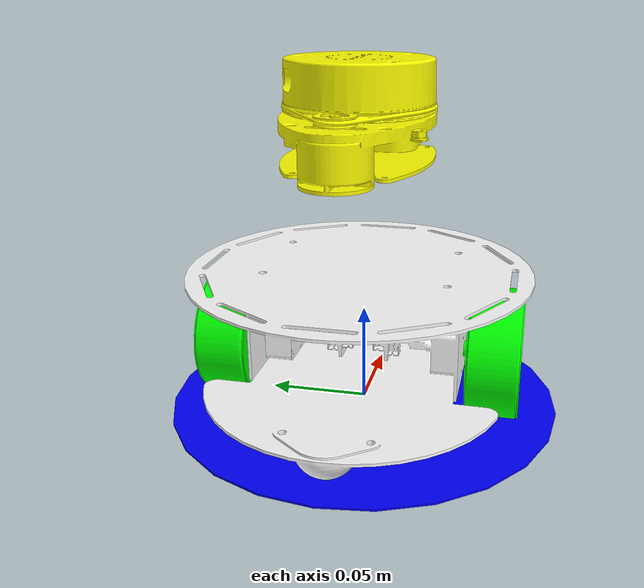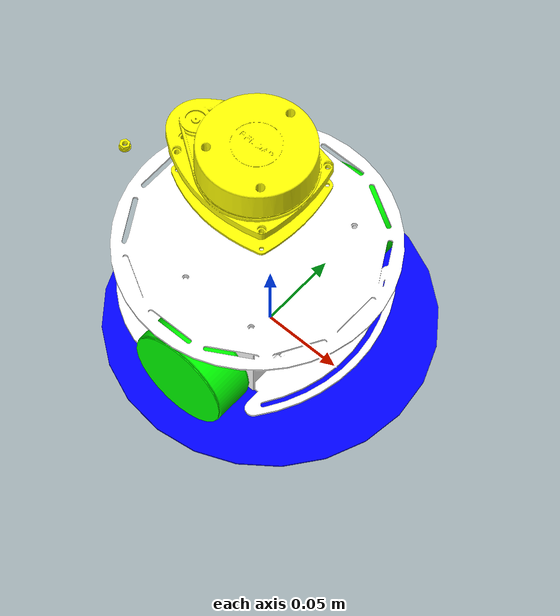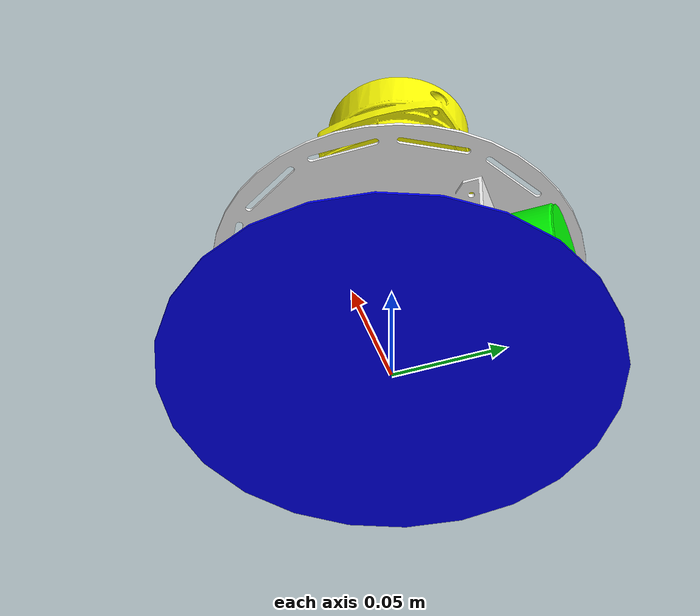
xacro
<?xml version="1.0" encoding="utf-8"?>
<robot name="abot"
	xmlns:xacro="http://www.ros.org/wiki/xacro">
	<xacro:property name="clearance" value="0.018" />
	<xacro:property name="wheel_radius" value="0.03195"/>
	<xacro:property name="wheel_separation" value="0.128"/>
	<xacro:property name="wheel_width" value="0.026"/>
	<xacro:property name="PI" value="3.1415926"/>
	<!-- Matherials -->
	<xacro:include filename="$(find abot_description)/urdf/abot_matherials.xacro" />
	<!-- abot_base -->
	<link name="abot_base">
		<inertial>
  			<origin xyz="-0.018609547232146 0.00100725867922426 0.0368403920902579" rpy="0 0 0" />
  			<mass value="0.38366067400424" />
  			<inertia ixx="0.000455060033055237" ixy="-1.42665016686539E-06" ixz="-9.36574661563202E-06" iyy="0.000428067922539319" iyz="-4.00231856414886E-07" izz="0.000800906575951907" />
		</inertial>
		<visual>
			<origin xyz="0 0 0" rpy="0 0 0" />
			<geometry>
				<mesh filename="package://abot_description/meshes/abot_base.STL" />
			</geometry>
			<material name="White" />
		</visual>
		<collision>
			<origin xyz="0 0 0" rpy="0 0 0" />
			<geometry>
				<mesh filename="package://abot_description/meshes/abot_base.STL" />
			</geometry>
		</collision>
	</link>
    <!-- base_link -->
	<link name="base_link">
		<visual>
			<origin xyz="0 0 0" rpy="0 0 0" />
            <geometry>
				<sphere radius="0.001" />
			</geometry>
		</visual>
	</link>
	<joint name="base_link_to_abot_base" type="fixed">
		<origin xyz="0 0 0" rpy="0 0 0" />
		<parent link="base_link" />
		<child link="abot_base" />
	</joint>
	<!-- base_footprint -->
	<link name="base_footprint">
		<visual>
			<origin xyz="0 0 0" rpy="0 0 0" />
			<geometry>
				<cylinder length="0.001" radius="0.100" />
			</geometry>
			<material name="Blue" />
		</visual>
	</link>
	<joint name="base_footprint_to_base_link" type="fixed">
		<origin xyz="0 0 ${clearance}" rpy="0 0 0" />
		<parent link="base_footprint" />
		<child link="base_link" />
	</joint>
    <!-- Wheels -->
	<xacro:include filename="$(find abot_description)/urdf/abot_left_wheel.xacro" />
	<xacro:include filename="$(find abot_description)/urdf/abot_right_wheel.xacro" />
	<xacro:include filename="$(find abot_description)/urdf/abot_caster_wheel.xacro" />
	<xacro:include filename="$(find abot_description)/urdf/abot_sensors.xacro" />
</robot>

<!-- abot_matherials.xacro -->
<robot
	xmlns:xacro="http://www.ros.org/wiki/xacro">
	<material name="Green">
		<color rgba="0.0 1.0 0.0 1.0"/>
	</material>
	<material name="Blue">
		<color rgba="0.0 0.0 1.0 1.0"/>
	</material>
	<material name="Red">
		<color rgba="1.0 0.0 0.0 1.0"/>
	</material>
	<material name="White">
		<color rgba="1.0 1.0 1.0 1.0"/>
	</material>
	<material name="Yellow">
		<color rgba="1.0 1.0 0.0 1.0"/>
	</material>
</robot>

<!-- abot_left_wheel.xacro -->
<robot name="abot"
	xmlns:xacro="http://www.ros.org/wiki/xacro">
    <!-- left_wheel -->
	<link name="abot_left_wheel">
		<inertial>
			<origin xyz="1.4324E-10 0.00056576 4.9274E-11" rpy="0 0 0" />
			<mass value="0.050464" />
			<inertia ixx="2.0701E-05" ixy="-1.8954E-14" ixz="-1.2393E-15" iyy="3.5827E-05" iyz="-1.8375E-14" izz="2.0701E-05" />
		</inertial>
		<visual>
			<origin xyz="0 0 0" rpy="0 0 0" />
			<geometry>
				<mesh filename="package://abot_description/meshes/abot_left_wheel.STL" />
			</geometry>
			<material name="Green" />
		</visual>
		<collision>
			<origin xyz="0 0 0" rpy="0 0 0" />
			<geometry>
				<mesh filename="package://abot_description/meshes/abot_left_wheel.STL" />
			</geometry>
		</collision>
	</link>
	<!-- left_wheel_geometry -->
	<link name="left_wheel">
		<visual>
			<origin xyz="0 0 0" rpy="${PI/2} 0 0" />
			<geometry>
				<cylinder length="${wheel_width}" radius="${wheel_radius}"/>
			</geometry>
			<material name="Green" />
		</visual>
		<collision>
			<origin xyz="0 0 0" rpy="${PI/2} 0 0" />
			<geometry>
				<cylinder length="${wheel_width}" radius="${wheel_radius}"/>
			</geometry>
		</collision>
	</link>
	<joint name="left_wheel_to_abot_left_wheel" type="fixed">
		<origin xyz="0 0 0" rpy="0 0 0" />
		<parent link="left_wheel" />
		<child link="abot_left_wheel" />
	</joint>
	<joint name="left_wheel_to_base" type="continuous">
		<origin xyz="0 0.068 0.0145" rpy="0 0 0" />
		<parent link="abot_base" />
		<child link="left_wheel" />
		<axis xyz="0 1 0" />
	</joint>
</robot>

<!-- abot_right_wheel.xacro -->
<robot name="abot"
	xmlns:xacro="http://www.ros.org/wiki/xacro">
    <!-- right_wheel -->
	<link name="abot_right_wheel">
		<inertial>
			<origin xyz="1.9255E-10 -0.00056576 1.0414E-10" rpy="0 0 0" />
			<mass value="0.050464" />
			<inertia ixx="2.0701E-05" ixy="3.8089E-14" ixz="-1.3584E-15" iyy="3.5827E-05" iyz="2.1838E-15" izz="2.0701E-05" />
		</inertial>
		<visual>
			<origin xyz="0 0 0" rpy="0 0 0" />
			<geometry>
				<mesh filename="package://abot_description/meshes/abot_right_wheel.STL" />
			</geometry>
			<material name="Green" />
		</visual>
		<collision>
			<origin xyz="0 0 0" rpy="0 0 0" />
			<geometry>
				<mesh filename="package://abot_description/meshes/abot_right_wheel.STL" />
			</geometry>
		</collision>
	</link>
	<link name="right_wheel">
		<visual>
			<origin xyz="0 0 0" rpy="${PI/2} 0 0" />
			<geometry>
				<cylinder length="${wheel_width}" radius="${wheel_radius}"/>
			</geometry>
			<material name="Green" />
		</visual>
		<collision>
			<origin xyz="0 0 0" rpy="${PI/2} 0 0" />
			<geometry>
				<cylinder length="${wheel_width}" radius="${wheel_radius}"/>
			</geometry>
		</collision>
	</link>
	<joint name="right_wheel_to_abot_right_wheel" type="fixed">
		<origin xyz="0 0 0" rpy="0 0 0" />
		<parent link="right_wheel" />
		<child link="abot_right_wheel" />
	</joint>
	<joint name="right_wheel_to_base" type="continuous">
		<origin xyz="0 -0.068 0.0145" rpy="0 0 0" />
		<parent link="abot_base" />
		<child link="right_wheel" />
		<axis xyz="0 1 0" />
	</joint>
</robot>

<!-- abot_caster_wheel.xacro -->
<robot name="abot"
	xmlns:xacro="http://www.ros.org/wiki/xacro">
	<!-- caster_wheel -->
	<link name="abot_caster_wheel">
		<inertial>
			<origin xyz="0 1.6073E-19 0" rpy="0 0 0" />
			<mass value="0.011207" />
			<inertia ixx="2.1965E-07" ixy="0" ixz="-1.9776E-56" iyy="2.1965E-07" iyz="0" izz="2.1965E-07" />
		</inertial>
		<visual>
			<origin xyz="0 0 0" rpy="0 0 0" />
			<geometry>
				<mesh filename="package://abot_description/meshes/abot_caster_wheel.STL" />
			</geometry>
			<material name="Green" />
		</visual>
		<collision>
			<origin xyz="0 0 0" rpy="0 0 0" />
			<geometry>
				<mesh filename="package://abot_description/meshes/abot_caster_wheel.STL" />
			</geometry>
		</collision>
	</link>
	<joint name="caster_wheel_to_base" type="fixed">
		<origin xyz="-0.078 0 -0.011" rpy="0 0 0" />
		<parent link="abot_base" />
		<child link="abot_caster_wheel" />
		<axis xyz="0 0 0" />
	</joint>
</robot>

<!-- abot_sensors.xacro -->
<robot name="abot"
	xmlns:xacro="http://www.ros.org/wiki/xacro">
	<!-- lidar -->
	<link name="abot_lidar">
		<inertial>
			<origin xyz="0.0118769386096909 -0.000753838771765047 -0.0199066395735294" rpy="0 0 0" />
			<mass value="0.601249620501043" />
			<inertia ixx="0.000163971147126097" ixy="-2.03059193776652E-07" ixz="-3.50083356803378E-06" iyy="0.000195001082010381" iyz="1.20160266671478E-07" izz="0.000341179024466778" />
		</inertial>
		<visual>
			<origin xyz="0 0 0" rpy="0 0 0" />
			<geometry>
				<mesh filename="package://abot_description/meshes/abot_lidar.STL" />
			</geometry>
			<material name="Yellow" />
		</visual>
		<collision>
			<origin xyz="0 0 0" rpy="0 0 0" />
			<geometry>
				<mesh filename="package://abot_description/meshes/abot_lidar.STL" />
			</geometry>
		</collision>
	</link>
	<joint name="lidar_to_base" type="fixed">
		<origin xyz="-0.01 0 0.1494" rpy="0 0 3.14159265358979" />
		<parent link="abot_base" />
		<child link="abot_lidar" />
		<axis xyz="0 0 0" />
	</joint>
</robot>
